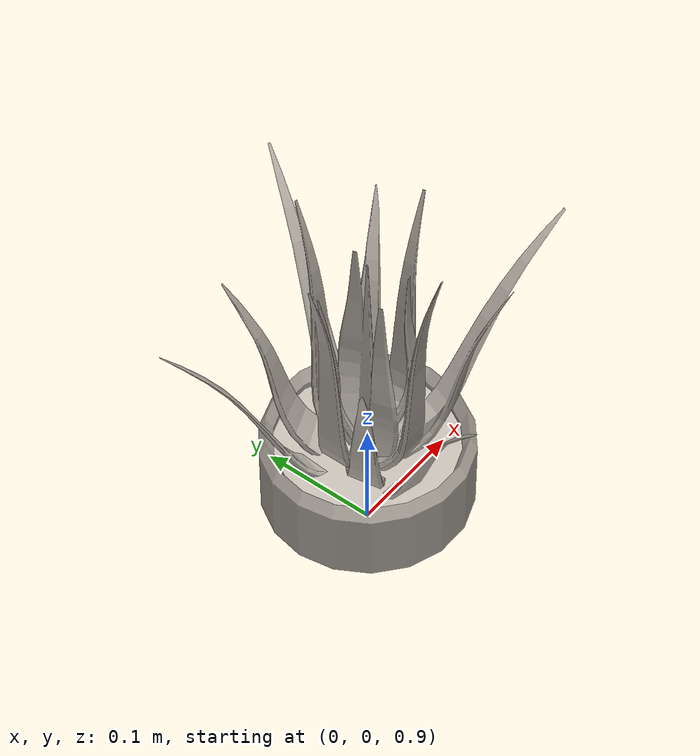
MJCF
<mujoco model="model">

  <asset>
    <texture file="tasks/water_plant/plant/visuals/material_0.png" name="tex-model" type="2d"/>
    <texture type="2d" name="image0" file="tasks/water_plant/plant/visuals/image0.png"/>
    <texture type="2d" name="image1" file="tasks/water_plant/plant/visuals/image1.png"/>
    <texture type="2d" name="image2" file="tasks/water_plant/plant/visuals/image2.png"/>
    <texture type="2d" name="image3" file="tasks/water_plant/plant/visuals/image3.png"/>

    <material name="model" reflectance="0.5" texrepeat="1 1" texture="tex-model" texuniform="false"/>
    <material name="blinn1SG" texture="image0" specular="0.5" shininess="0.15999998099999999"/>
    <material name="blinn2SG" texture="image1" specular="0.5" shininess="0.15999998099999999"/>
    <material name="blinn3SG" texture="image2" specular="0.5" shininess="0.15999998099999999"/>
    <material name="blinn4SG" texture="image3" specular="0.5" shininess="0.0"/>

    <!-- meshes scaled to 0.3 -->
    <mesh file="tasks/water_plant/plant/visuals/model_0.obj" name="model_0_vis" scale="0.3 0.3 0.3"/>
    <mesh file="tasks/water_plant/plant/visuals/model_1.obj" name="model_1_vis" scale="0.3 0.3 0.3"/>
    <mesh file="tasks/water_plant/plant/visuals/model_2.obj" name="model_2_vis" scale="0.3 0.3 0.3"/>
    <mesh file="tasks/water_plant/plant/visuals/model_3.obj" name="model_3_vis" scale="0.3 0.3 0.3"/>
  </asset>

  <default>
    <default class="plant_visual">
      <geom conaffinity="0" contype="0" group="1" type="mesh"/>
    </default>
    <default class="plant_collision">
      <geom group="3" rgba="0.5 0 0 0.5"/>
    </default>
  </default>

  <worldbody>
    <!-- object body -->
    <body name="plant" pos="0 0 1.06">
      <geom solimp="0.998 0.998 0.001" solref="0.001 1" density="100" friction="0.95 0.3 0.1" type="mesh" mesh="model_0_vis" material="blinn2SG" class="plant_visual"/>
      <geom solimp="0.998 0.998 0.001" solref="0.001 1" density="100" friction="0.95 0.3 0.1" type="mesh" mesh="model_1_vis" material="blinn1SG" class="plant_visual"/>
      <geom solimp="0.998 0.998 0.001" solref="0.001 1" density="100" friction="0.95 0.3 0.1" type="mesh" mesh="model_2_vis" material="blinn4SG" class="plant_visual"/>
      <geom solimp="0.998 0.998 0.001" solref="0.001 1" density="100" friction="0.95 0.3 0.1" type="mesh" mesh="model_3_vis" material="blinn3SG" class="plant_visual"/>
      <geom class="plant_collision" type="cylinder" pos="0 0 0" size="0.1 0.15"/>
      <geom class="plant_visual" type="cylinder" pos="0 0 0" size="0.2 0.2" rgba="0 0.5 0 0.5" group="5"/>
      <site name="ext_p0" rgba="0 0 0 0" size="0.003" pos="-0.105 -0.105 -0.15"/>
      <site name="ext_px" rgba="1 0 0 0" size="0.003" pos="0.105 -0.105 -0.15"/>
      <site name="ext_py" rgba="0 1 0 0" size="0.003" pos="-0.105 0.105 -0.15"/>
      <site name="ext_pz" rgba="0 0 1 0" size="0.003" pos="-0.105 -0.105 0.15"/>
    </body>
  </worldbody>
</mujoco>
